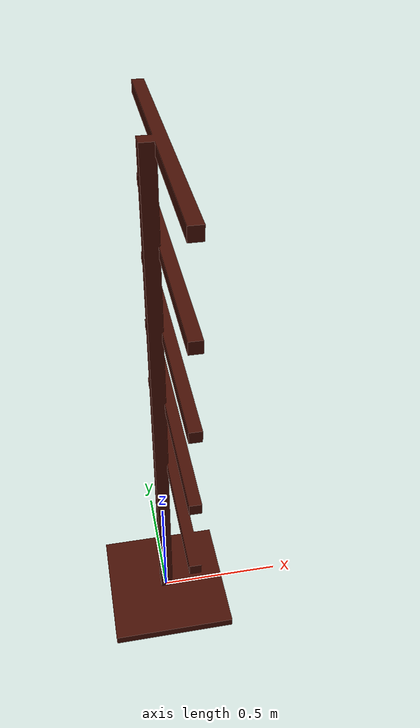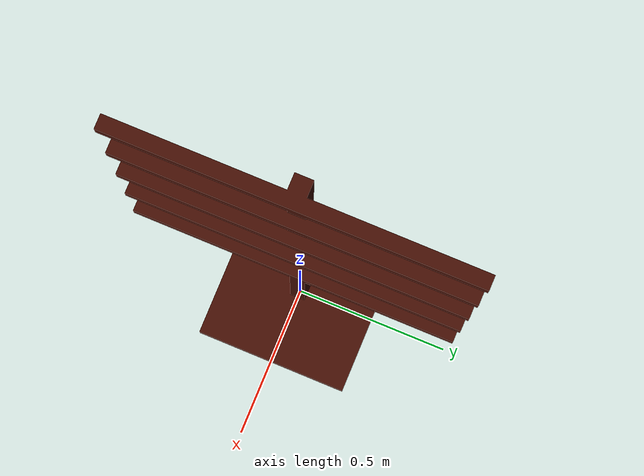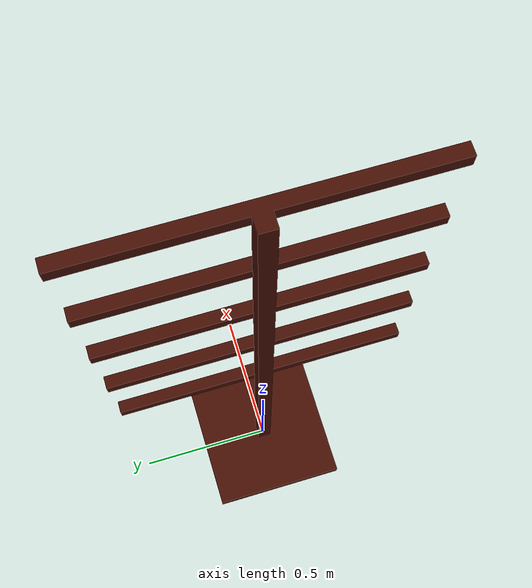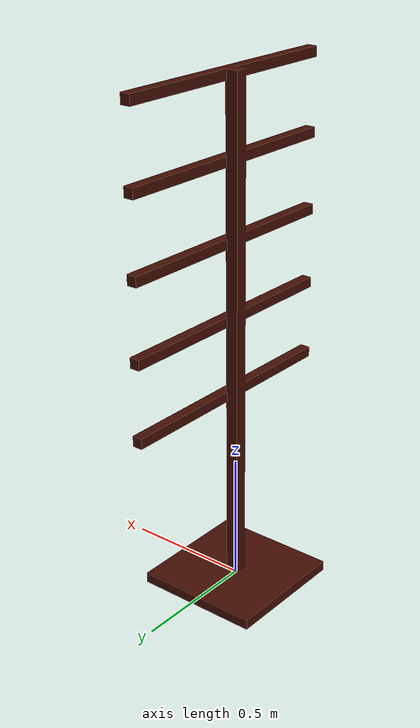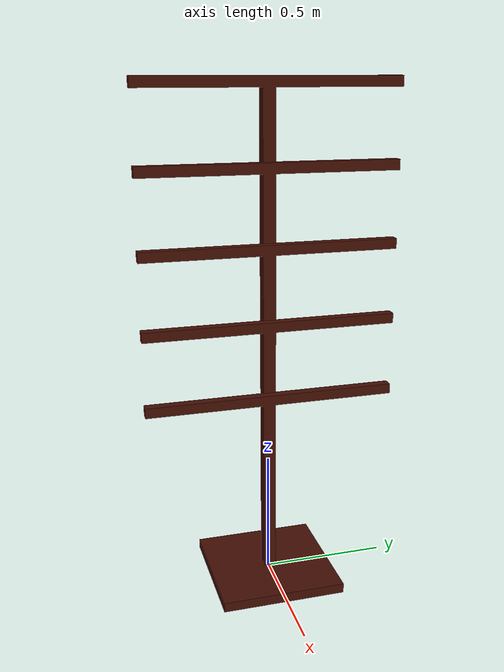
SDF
<sdf version="1.6">
 <world name="3D_5_1_6_0">
  <light name="sun" type="directional">
   <pose>0 0 10 0 -0 0</pose>
   <diffuse>1 1 1 1</diffuse>
   <specular>0.2 0.2 0.2 1</specular>
   <attenuation>
    <range>1000</range>
    <constant>0.9</constant>
    <linear>0.01</linear>
    <quadratic>0.001</quadratic>
   </attenuation>
   <direction>-0.5 -0.5 -1</direction>
  </light>
  <physics name="default_physics" default="0" type="ode">
   <max_step_size>0.001</max_step_size>
   <real_time_factor>1</real_time_factor>
   <real_time_update_rate>1000</real_time_update_rate>
  </physics>
  <scene><ambient>1 1 1 1</ambient><background>0.0 0.0 0.0 1</background><shadows>0</shadows></scene>
  <spherical_coordinates>
   <surface_model>EARTH_WGS84</surface_model>
   <latitude_deg>0.00</latitude_deg>
   <longitude_deg>0.00</longitude_deg>
   <elevation>0</elevation>
   <heading_deg>0</heading_deg>
  </spherical_coordinates>
  <gravity>0 0 -9.8</gravity>
  <magnetic_field>6e-06 2.3e-05 -4.2e-05</magnetic_field>
  <atmosphere type="adiabatic"/>
  <model name="digital_tree">
   <link name="digital_tree_link">
    <inertial>
     <mass>50</mass>
     <inertia><ixx>1000</ixx><ixy>1000</ixy><ixz>1000</ixz><iyy>1000</iyy><iyz>1000</iyz><izz>1000</izz></inertia>
    </inertial>
    <collision name="digital_tree_link_collision">
     <geometry>
      <mesh>
       <scale>1 1 1</scale>
       <uri>file:///media/mirko/Volume/GITHUB/Positioning_MetroAgriFor2024/models/digital_tree/meshes/digital_tree.dae</uri>
      </mesh>
     </geometry>
    </collision>
    <visual name="digital_tree_link_visual">
     <geometry>
      <mesh>
       <scale>1 1 1</scale>
       <uri>file:///media/mirko/Volume/GITHUB/Positioning_MetroAgriFor2024/models/digital_tree/meshes/digital_tree.dae</uri>
      </mesh>
     </geometry>
    </visual>
   </link>
   <static>1</static>
   <pose>0 0 0 0 0 1.57</pose>
  </model>
  <model name="1">
   <link name="1_link">
    <inertial>
     <mass>0.0058</mass>
     <inertia><ixx>1000</ixx><ixy>1000</ixy><ixz>1000</ixz><iyy>1000</iyy><iyz>1000</iyz><izz>1000</izz></inertia>
    </inertial>
    <collision name="1_link_collision">
     <geometry>
      <mesh>
       <scale>1 1 1</scale>
       <size>0.0651789285714286 0.0651789285714286 0.0651789285714286</size>
       <uri>file:///media/mirko/Volume/GITHUB/Positioning_MetroAgriFor2024/models/tennis_ball/meshes/TennisBall.dae</uri>
      </mesh>
     </geometry>
    </collision>
    <visual name="1_link_visual">
     <geometry>
      <mesh>
       <size>0.0651789285714286 0.0651789285714286 0.0651789285714286</size>
       <scale>1 1 1</scale>
       <uri>file:///media/mirko/Volume/GITHUB/Positioning_MetroAgriFor2024/models/tennis_ball/meshes/TennisBall.dae</uri>
      </mesh>
     </geometry>
     <material>
      <ambient>1.0 1.0 0 1</ambient>
      <diffuse>0.7 0.9 0 1</diffuse>
      <specular>0.2 0.2 0.2 64</specular>
      <emissive>0.1 0 0.1 1</emissive>
     </material>
    </visual>
   </link>
   <static>1</static>
  </model>
  <model name="2">
   <link name="2_link">
    <inertial>
     <mass>0.00915539245667686</mass>
     <inertia><ixx>1000</ixx><ixy>1000</ixy><ixz>1000</ixz><iyy>1000</iyy><iyz>1000</iyz><izz>1000</izz></inertia>
    </inertial>
    <collision name="2_link_collision">
     <geometry>
      <mesh>
       <scale>1 1 1</scale>
       <size>0.05986 0.05596 0.052340000000000005</size>
       <uri>file:///media/mirko/Volume/GITHUB/Positioning_MetroAgriFor2024/models/apple/meshes/apple.dae</uri>
      </mesh>
     </geometry>
    </collision>
    <visual name="2_link_visual">
     <geometry>
      <mesh>
       <size>0.05986 0.05596 0.052340000000000005</size>
       <scale>1 1 1</scale>
       <uri>file:///media/mirko/Volume/GITHUB/Positioning_MetroAgriFor2024/models/apple/meshes/apple.dae</uri>
      </mesh>
     </geometry>
     <material>
      <ambient>0.792156862745098 0.49411764705882355 0.41568627450980394 1.0</ambient>
      <diffuse>0.7 0.9 0 1</diffuse>
      <specular>0.2 0.2 0.2 64</specular>
      <emissive>0.1 0 0.1 1</emissive>
     </material>
    </visual>
   </link>
   <static>1</static>
  </model>
  <model name="3">
   <link name="3_link">
    <inertial>
     <mass>0.010428165137614678</mass>
     <inertia><ixx>1000</ixx><ixy>1000</ixy><ixz>1000</ixz><iyy>1000</iyy><iyz>1000</iyz><izz>1000</izz></inertia>
    </inertial>
    <collision name="3_link_collision">
     <geometry>
      <mesh>
       <scale>1 1 1</scale>
       <size>0.061149999999999996 0.05579 0.05243</size>
       <uri>file:///media/mirko/Volume/GITHUB/Positioning_MetroAgriFor2024/models/apple/meshes/apple.dae</uri>
      </mesh>
     </geometry>
    </collision>
    <visual name="3_link_visual">
     <geometry>
      <mesh>
       <size>0.061149999999999996 0.05579 0.05243</size>
       <scale>1 1 1</scale>
       <uri>file:///media/mirko/Volume/GITHUB/Positioning_MetroAgriFor2024/models/apple/meshes/apple.dae</uri>
      </mesh>
     </geometry>
     <material>
      <ambient>0.9470588235294117 0.9803921568627451 0.7490196078431373 1.0</ambient>
      <diffuse>0.7 0.9 0 1</diffuse>
      <specular>0.2 0.2 0.2 64</specular>
      <emissive>0.1 0 0.1 1</emissive>
     </material>
    </visual>
   </link>
   <static>1</static>
  </model>
  <model name="4">
   <link name="4_link">
    <inertial>
     <mass>0.011163730886850153</mass>
     <inertia><ixx>1000</ixx><ixy>1000</ixy><ixz>1000</ixz><iyy>1000</iyy><iyz>1000</iyz><izz>1000</izz></inertia>
    </inertial>
    <collision name="4_link_collision">
     <geometry>
      <mesh>
       <scale>1 1 1</scale>
       <size>0.06436 0.061149999999999996 0.05579</size>
       <uri>file:///media/mirko/Volume/GITHUB/Positioning_MetroAgriFor2024/models/apple/meshes/apple.dae</uri>
      </mesh>
     </geometry>
    </collision>
    <visual name="4_link_visual">
     <geometry>
      <mesh>
       <size>0.06436 0.061149999999999996 0.05579</size>
       <scale>1 1 1</scale>
       <uri>file:///media/mirko/Volume/GITHUB/Positioning_MetroAgriFor2024/models/apple/meshes/apple.dae</uri>
      </mesh>
     </geometry>
     <material>
      <ambient>0.7450980392156863 0.7607843137254902 0.5411764705882353 1.0</ambient>
      <diffuse>0.7 0.9 0 1</diffuse>
      <specular>0.2 0.2 0.2 64</specular>
      <emissive>0.1 0 0.1 1</emissive>
     </material>
    </visual>
   </link>
   <static>1</static>
  </model>
  <model name="5">
   <link name="5_link">
    <inertial>
     <mass>0.009999286442405707</mass>
     <inertia><ixx>1000</ixx><ixy>1000</ixy><ixz>1000</ixz><iyy>1000</iyy><iyz>1000</iyz><izz>1000</izz></inertia>
    </inertial>
    <collision name="5_link_collision">
     <geometry>
      <mesh>
       <scale>1 1 1</scale>
       <size>0.05882 0.05952 0.052469999999999996</size>
       <uri>file:///media/mirko/Volume/GITHUB/Positioning_MetroAgriFor2024/models/apple/meshes/apple.dae</uri>
      </mesh>
     </geometry>
    </collision>
    <visual name="5_link_visual">
     <geometry>
      <mesh>
       <size>0.05882 0.05952 0.052469999999999996</size>
       <scale>1 1 1</scale>
       <uri>file:///media/mirko/Volume/GITHUB/Positioning_MetroAgriFor2024/models/apple/meshes/apple.dae</uri>
      </mesh>
     </geometry>
     <material>
      <ambient>0.6823529411764706 0.6235294117647059 0.4392156862745098 1.0</ambient>
      <diffuse>0.7 0.9 0 1</diffuse>
      <specular>0.2 0.2 0.2 64</specular>
      <emissive>0.1 0 0.1 1</emissive>
     </material>
    </visual>
   </link>
   <static>1</static>
  </model>
  <model name="6">
   <link name="6_link">
    <inertial>
     <mass>0.007805096839959225</mass>
     <inertia><ixx>1000</ixx><ixy>1000</ixy><ixz>1000</ixz><iyy>1000</iyy><iyz>1000</iyz><izz>1000</izz></inertia>
    </inertial>
    <collision name="6_link_collision">
     <geometry>
      <mesh>
       <scale>1 1 1</scale>
       <size>0.053700000000000005 0.05374 0.05364</size>
       <uri>file:///media/mirko/Volume/GITHUB/Positioning_MetroAgriFor2024/models/apple/meshes/apple.dae</uri>
      </mesh>
     </geometry>
    </collision>
    <visual name="6_link_visual">
     <geometry>
      <mesh>
       <size>0.053700000000000005 0.05374 0.05364</size>
       <scale>1 1 1</scale>
       <uri>file:///media/mirko/Volume/GITHUB/Positioning_MetroAgriFor2024/models/apple/meshes/apple.dae</uri>
      </mesh>
     </geometry>
     <material>
      <ambient>0.6666666666666666 0.1568627450980392 0.24313725490196078 1.0</ambient>
      <diffuse>0.7 0.9 0 1</diffuse>
      <specular>0.2 0.2 0.2 64</specular>
      <emissive>0.1 0 0.1 1</emissive>
     </material>
    </visual>
   </link>
   <static>1</static>
  </model>
  <model name="7">
   <link name="7_link">
    <inertial>
     <mass>0.009494189602446482</mass>
     <inertia><ixx>1000</ixx><ixy>1000</ixy><ixz>1000</ixz><iyy>1000</iyy><iyz>1000</iyz><izz>1000</izz></inertia>
    </inertial>
    <collision name="7_link_collision">
     <geometry>
      <mesh>
       <scale>1 1 1</scale>
       <size>0.06105 0.05845 0.04982</size>
       <uri>file:///media/mirko/Volume/GITHUB/Positioning_MetroAgriFor2024/models/apple/meshes/apple.dae</uri>
      </mesh>
     </geometry>
    </collision>
    <visual name="7_link_visual">
     <geometry>
      <mesh>
       <size>0.06105 0.05845 0.04982</size>
       <scale>1 1 1</scale>
       <uri>file:///media/mirko/Volume/GITHUB/Positioning_MetroAgriFor2024/models/apple/meshes/apple.dae</uri>
      </mesh>
     </geometry>
     <material>
      <ambient>0.7176470588235294 0.6333333333333333 0.396078431372549 1.0</ambient>
      <diffuse>0.7 0.9 0 1</diffuse>
      <specular>0.2 0.2 0.2 64</specular>
      <emissive>0.1 0 0.1 1</emissive>
     </material>
    </visual>
   </link>
   <static>1</static>
  </model>
  <model name="8">
   <link name="8_link">
    <inertial>
     <mass>0.0058</mass>
     <inertia><ixx>1000</ixx><ixy>1000</ixy><ixz>1000</ixz><iyy>1000</iyy><iyz>1000</iyz><izz>1000</izz></inertia>
    </inertial>
    <collision name="8_link_collision">
     <geometry>
      <mesh>
       <scale>1 1 1</scale>
       <size>0.0651789285714286 0.0651789285714286 0.0651789285714286</size>
       <uri>file:///media/mirko/Volume/GITHUB/Positioning_MetroAgriFor2024/models/tennis_ball/meshes/TennisBall.dae</uri>
      </mesh>
     </geometry>
    </collision>
    <visual name="8_link_visual">
     <geometry>
      <mesh>
       <size>0.0651789285714286 0.0651789285714286 0.0651789285714286</size>
       <scale>1 1 1</scale>
       <uri>file:///media/mirko/Volume/GITHUB/Positioning_MetroAgriFor2024/models/tennis_ball/meshes/TennisBall.dae</uri>
      </mesh>
     </geometry>
     <material>
      <ambient>1.0 1.0 0 1</ambient>
      <diffuse>0.7 0.9 0 1</diffuse>
      <specular>0.2 0.2 0.2 64</specular>
      <emissive>0.1 0 0.1 1</emissive>
     </material>
    </visual>
   </link>
   <static>1</static>
  </model>
  <model name="9">
   <link name="9_link">
    <inertial>
     <mass>0.012033598369011213</mass>
     <inertia><ixx>1000</ixx><ixy>1000</ixy><ixz>1000</ixz><iyy>1000</iyy><iyz>1000</iyz><izz>1000</izz></inertia>
    </inertial>
    <collision name="9_link_collision">
     <geometry>
      <mesh>
       <scale>1 1 1</scale>
       <size>0.06418 0.06325 0.055560000000000005</size>
       <uri>file:///media/mirko/Volume/GITHUB/Positioning_MetroAgriFor2024/models/apple/meshes/apple.dae</uri>
      </mesh>
     </geometry>
    </collision>
    <visual name="9_link_visual">
     <geometry>
      <mesh>
       <size>0.06418 0.06325 0.055560000000000005</size>
       <scale>1 1 1</scale>
       <uri>file:///media/mirko/Volume/GITHUB/Positioning_MetroAgriFor2024/models/apple/meshes/apple.dae</uri>
      </mesh>
     </geometry>
     <material>
      <ambient>0.6627450980392157 0.17254901960784313 0.307843137254902 1.0</ambient>
      <diffuse>0.7 0.9 0 1</diffuse>
      <specular>0.2 0.2 0.2 64</specular>
      <emissive>0.1 0 0.1 1</emissive>
     </material>
    </visual>
   </link>
   <static>1</static>
  </model>
  <model name="10">
   <link name="10_link">
    <inertial>
     <mass>0.005653802242609582</mass>
     <inertia><ixx>1000</ixx><ixy>1000</ixy><ixz>1000</ixz><iyy>1000</iyy><iyz>1000</iyz><izz>1000</izz></inertia>
    </inertial>
    <collision name="10_link_collision">
     <geometry>
      <mesh>
       <scale>1 1 1</scale>
       <size>0.049530000000000005 0.047049999999999995 0.04403</size>
       <uri>file:///media/mirko/Volume/GITHUB/Positioning_MetroAgriFor2024/models/apple/meshes/apple.dae</uri>
      </mesh>
     </geometry>
    </collision>
    <visual name="10_link_visual">
     <geometry>
      <mesh>
       <size>0.049530000000000005 0.047049999999999995 0.04403</size>
       <scale>1 1 1</scale>
       <uri>file:///media/mirko/Volume/GITHUB/Positioning_MetroAgriFor2024/models/apple/meshes/apple.dae</uri>
      </mesh>
     </geometry>
     <material>
      <ambient>0.5882352941176471 0.47058823529411764 0.3215686274509804 1.0</ambient>
      <diffuse>0.7 0.9 0 1</diffuse>
      <specular>0.2 0.2 0.2 64</specular>
      <emissive>0.1 0 0.1 1</emissive>
     </material>
    </visual>
   </link>
   <static>1</static>
  </model>
  <model name="11">
   <link name="11_link">
    <inertial>
     <mass>0.016063649337410803</mass>
     <inertia><ixx>1000</ixx><ixy>1000</ixy><ixz>1000</ixz><iyy>1000</iyy><iyz>1000</iyz><izz>1000</izz></inertia>
    </inertial>
    <collision name="11_link_collision">
     <geometry>
      <mesh>
       <scale>1 1 1</scale>
       <size>0.06987 0.06844 0.06317</size>
       <uri>file:///media/mirko/Volume/GITHUB/Positioning_MetroAgriFor2024/models/apple/meshes/apple.dae</uri>
      </mesh>
     </geometry>
    </collision>
    <visual name="11_link_visual">
     <geometry>
      <mesh>
       <size>0.06987 0.06844 0.06317</size>
       <scale>1 1 1</scale>
       <uri>file:///media/mirko/Volume/GITHUB/Positioning_MetroAgriFor2024/models/apple/meshes/apple.dae</uri>
      </mesh>
     </geometry>
     <material>
      <ambient>0.7450980392156863 0.18823529411764706 0.25882352941176473 1.0</ambient>
      <diffuse>0.7 0.9 0 1</diffuse>
      <specular>0.2 0.2 0.2 64</specular>
      <emissive>0.1 0 0.1 1</emissive>
     </material>
    </visual>
   </link>
   <static>1</static>
  </model>
  <model name="12">
   <link name="12_link">
    <inertial>
     <mass>0.009446177370030581</mass>
     <inertia><ixx>1000</ixx><ixy>1000</ixy><ixz>1000</ixz><iyy>1000</iyy><iyz>1000</iyz><izz>1000</izz></inertia>
    </inertial>
    <collision name="12_link_collision">
     <geometry>
      <mesh>
       <scale>1 1 1</scale>
       <size>0.059789999999999996 0.05779 0.05198</size>
       <uri>file:///media/mirko/Volume/GITHUB/Positioning_MetroAgriFor2024/models/apple/meshes/apple.dae</uri>
      </mesh>
     </geometry>
    </collision>
    <visual name="12_link_visual">
     <geometry>
      <mesh>
       <size>0.059789999999999996 0.05779 0.05198</size>
       <scale>1 1 1</scale>
       <uri>file:///media/mirko/Volume/GITHUB/Positioning_MetroAgriFor2024/models/apple/meshes/apple.dae</uri>
      </mesh>
     </geometry>
     <material>
      <ambient>0.6784313725490196 0.5098039215686274 0.3196078431372549 1.0</ambient>
      <diffuse>0.7 0.9 0 1</diffuse>
      <specular>0.2 0.2 0.2 64</specular>
      <emissive>0.1 0 0.1 1</emissive>
     </material>
    </visual>
   </link>
   <static>1</static>
  </model>
  <model name="13">
   <link name="13_link">
    <inertial>
     <mass>0.01463782874617737</mass>
     <inertia><ixx>1000</ixx><ixy>1000</ixy><ixz>1000</ixz><iyy>1000</iyy><iyz>1000</iyz><izz>1000</izz></inertia>
    </inertial>
    <collision name="13_link_collision">
     <geometry>
      <mesh>
       <scale>1 1 1</scale>
       <size>0.06909 0.06714 0.059789999999999996</size>
       <uri>file:///media/mirko/Volume/GITHUB/Positioning_MetroAgriFor2024/models/apple/meshes/apple.dae</uri>
      </mesh>
     </geometry>
    </collision>
    <visual name="13_link_visual">
     <geometry>
      <mesh>
       <size>0.06909 0.06714 0.059789999999999996</size>
       <scale>1 1 1</scale>
       <uri>file:///media/mirko/Volume/GITHUB/Positioning_MetroAgriFor2024/models/apple/meshes/apple.dae</uri>
      </mesh>
     </geometry>
     <material>
      <ambient>0.7490196078431373 0.20392156862745098 0.34705882352941175 1.0</ambient>
      <diffuse>0.7 0.9 0 1</diffuse>
      <specular>0.2 0.2 0.2 64</specular>
      <emissive>0.1 0 0.1 1</emissive>
     </material>
    </visual>
   </link>
   <static>1</static>
  </model>
  <model name="14">
   <link name="14_link">
    <inertial>
     <mass>0.00916821610601427</mass>
     <inertia><ixx>1000</ixx><ixy>1000</ixy><ixz>1000</ixz><iyy>1000</iyy><iyz>1000</iyz><izz>1000</izz></inertia>
    </inertial>
    <collision name="14_link_collision">
     <geometry>
      <mesh>
       <scale>1 1 1</scale>
       <size>0.05787 0.05712 0.05273</size>
       <uri>file:///media/mirko/Volume/GITHUB/Positioning_MetroAgriFor2024/models/apple/meshes/apple.dae</uri>
      </mesh>
     </geometry>
    </collision>
    <visual name="14_link_visual">
     <geometry>
      <mesh>
       <size>0.05787 0.05712 0.05273</size>
       <scale>1 1 1</scale>
       <uri>file:///media/mirko/Volume/GITHUB/Positioning_MetroAgriFor2024/models/apple/meshes/apple.dae</uri>
      </mesh>
     </geometry>
     <material>
      <ambient>0.7686274509803922 0.4627450980392157 0.35294117647058826 1.0</ambient>
      <diffuse>0.7 0.9 0 1</diffuse>
      <specular>0.2 0.2 0.2 64</specular>
      <emissive>0.1 0 0.1 1</emissive>
     </material>
    </visual>
   </link>
   <static>1</static>
  </model>
  <model name="15">
   <link name="15_link">
    <inertial>
     <mass>0.0058</mass>
     <inertia><ixx>1000</ixx><ixy>1000</ixy><ixz>1000</ixz><iyy>1000</iyy><iyz>1000</iyz><izz>1000</izz></inertia>
    </inertial>
    <collision name="15_link_collision">
     <geometry>
      <mesh>
       <scale>1 1 1</scale>
       <size>0.0651789285714286 0.0651789285714286 0.0651789285714286</size>
       <uri>file:///media/mirko/Volume/GITHUB/Positioning_MetroAgriFor2024/models/tennis_ball/meshes/TennisBall.dae</uri>
      </mesh>
     </geometry>
    </collision>
    <visual name="15_link_visual">
     <geometry>
      <mesh>
       <size>0.0651789285714286 0.0651789285714286 0.0651789285714286</size>
       <scale>1 1 1</scale>
       <uri>file:///media/mirko/Volume/GITHUB/Positioning_MetroAgriFor2024/models/tennis_ball/meshes/TennisBall.dae</uri>
      </mesh>
     </geometry>
     <material>
      <ambient>1.0 1.0 0 1</ambient>
      <diffuse>0.7 0.9 0 1</diffuse>
      <specular>0.2 0.2 0.2 64</specular>
      <emissive>0.1 0 0.1 1</emissive>
     </material>
    </visual>
   </link>
   <static>1</static>
  </model>
  <model name="16">
   <link name="16_link">
    <inertial>
     <mass>0.013899673802242609</mass>
     <inertia><ixx>1000</ixx><ixy>1000</ixy><ixz>1000</ixz><iyy>1000</iyy><iyz>1000</iyz><izz>1000</izz></inertia>
    </inertial>
    <collision name="16_link_collision">
     <geometry>
      <mesh>
       <scale>1 1 1</scale>
       <size>0.06658 0.06581000000000001 0.05819</size>
       <uri>file:///media/mirko/Volume/GITHUB/Positioning_MetroAgriFor2024/models/apple/meshes/apple.dae</uri>
      </mesh>
     </geometry>
    </collision>
    <visual name="16_link_visual">
     <geometry>
      <mesh>
       <size>0.06658 0.06581000000000001 0.05819</size>
       <scale>1 1 1</scale>
       <uri>file:///media/mirko/Volume/GITHUB/Positioning_MetroAgriFor2024/models/apple/meshes/apple.dae</uri>
      </mesh>
     </geometry>
     <material>
      <ambient>0.788235294117647 0.3411764705882353 0.4588235294117647 1.0</ambient>
      <diffuse>0.7 0.9 0 1</diffuse>
      <specular>0.2 0.2 0.2 64</specular>
      <emissive>0.1 0 0.1 1</emissive>
     </material>
    </visual>
   </link>
   <static>1</static>
  </model>
  <model name="17">
   <link name="17_link">
    <inertial>
     <mass>0.0055846177370030585</mass>
     <inertia><ixx>1000</ixx><ixy>1000</ixy><ixz>1000</ixz><iyy>1000</iyy><iyz>1000</iyz><izz>1000</izz></inertia>
    </inertial>
    <collision name="17_link_collision">
     <geometry>
      <mesh>
       <scale>1 1 1</scale>
       <size>0.04845 0.049159999999999995 0.0418</size>
       <uri>file:///media/mirko/Volume/GITHUB/Positioning_MetroAgriFor2024/models/apple/meshes/apple.dae</uri>
      </mesh>
     </geometry>
    </collision>
    <visual name="17_link_visual">
     <geometry>
      <mesh>
       <size>0.04845 0.049159999999999995 0.0418</size>
       <scale>1 1 1</scale>
       <uri>file:///media/mirko/Volume/GITHUB/Positioning_MetroAgriFor2024/models/apple/meshes/apple.dae</uri>
      </mesh>
     </geometry>
     <material>
      <ambient>0.6823529411764706 0.6274509803921569 0.49411764705882355 1.0</ambient>
      <diffuse>0.7 0.9 0 1</diffuse>
      <specular>0.2 0.2 0.2 64</specular>
      <emissive>0.1 0 0.1 1</emissive>
     </material>
    </visual>
   </link>
   <static>1</static>
  </model>
  <model name="18">
   <link name="18_link">
    <inertial>
     <mass>0.009107064220183486</mass>
     <inertia><ixx>1000</ixx><ixy>1000</ixy><ixz>1000</ixz><iyy>1000</iyy><iyz>1000</iyz><izz>1000</izz></inertia>
    </inertial>
    <collision name="18_link_collision">
     <geometry>
      <mesh>
       <scale>1 1 1</scale>
       <size>0.05932 0.056850000000000005 0.05077</size>
       <uri>file:///media/mirko/Volume/GITHUB/Positioning_MetroAgriFor2024/models/apple/meshes/apple.dae</uri>
      </mesh>
     </geometry>
    </collision>
    <visual name="18_link_visual">
     <geometry>
      <mesh>
       <size>0.05932 0.056850000000000005 0.05077</size>
       <scale>1 1 1</scale>
       <uri>file:///media/mirko/Volume/GITHUB/Positioning_MetroAgriFor2024/models/apple/meshes/apple.dae</uri>
      </mesh>
     </geometry>
     <material>
      <ambient>0.6588235294117647 0.5215686274509804 0.3568627450980392 1.0</ambient>
      <diffuse>0.7 0.9 0 1</diffuse>
      <specular>0.2 0.2 0.2 64</specular>
      <emissive>0.1 0 0.1 1</emissive>
     </material>
    </visual>
   </link>
   <static>1</static>
  </model>
  <model name="19">
   <link name="19_link">
    <inertial>
     <mass>0.0058</mass>
     <inertia><ixx>1000</ixx><ixy>1000</ixy><ixz>1000</ixz><iyy>1000</iyy><iyz>1000</iyz><izz>1000</izz></inertia>
    </inertial>
    <collision name="19_link_collision">
     <geometry>
      <mesh>
       <scale>1 1 1</scale>
       <size>0.0651789285714286 0.0651789285714286 0.0651789285714286</size>
       <uri>file:///media/mirko/Volume/GITHUB/Positioning_MetroAgriFor2024/models/tennis_ball/meshes/TennisBall.dae</uri>
      </mesh>
     </geometry>
    </collision>
    <visual name="19_link_visual">
     <geometry>
      <mesh>
       <size>0.0651789285714286 0.0651789285714286 0.0651789285714286</size>
       <scale>1 1 1</scale>
       <uri>file:///media/mirko/Volume/GITHUB/Positioning_MetroAgriFor2024/models/tennis_ball/meshes/TennisBall.dae</uri>
      </mesh>
     </geometry>
     <material>
      <ambient>1.0 1.0 0 1</ambient>
      <diffuse>0.7 0.9 0 1</diffuse>
      <specular>0.2 0.2 0.2 64</specular>
      <emissive>0.1 0 0.1 1</emissive>
     </material>
    </visual>
   </link>
   <static>1</static>
  </model>
  <model name="20">
   <link name="20_link">
    <inertial>
     <mass>0.013313068297655453</mass>
     <inertia><ixx>1000</ixx><ixy>1000</ixy><ixz>1000</ixz><iyy>1000</iyy><iyz>1000</iyz><izz>1000</izz></inertia>
    </inertial>
    <collision name="20_link_collision">
     <geometry>
      <mesh>
       <scale>1 1 1</scale>
       <size>0.06508 0.06317 0.05831</size>
       <uri>file:///media/mirko/Volume/GITHUB/Positioning_MetroAgriFor2024/models/apple/meshes/apple.dae</uri>
      </mesh>
     </geometry>
    </collision>
    <visual name="20_link_visual">
     <geometry>
      <mesh>
       <size>0.06508 0.06317 0.05831</size>
       <scale>1 1 1</scale>
       <uri>file:///media/mirko/Volume/GITHUB/Positioning_MetroAgriFor2024/models/apple/meshes/apple.dae</uri>
      </mesh>
     </geometry>
     <material>
      <ambient>0.7294117647058823 0.35294117647058826 0.44313725490196076 1.0</ambient>
      <diffuse>0.7 0.9 0 1</diffuse>
      <specular>0.2 0.2 0.2 64</specular>
      <emissive>0.1 0 0.1 1</emissive>
     </material>
    </visual>
   </link>
   <static>1</static>
  </model>
  <model name="21">
   <link name="21_link">
    <inertial>
     <mass>0.011936483180428134</mass>
     <inertia><ixx>1000</ixx><ixy>1000</ixy><ixz>1000</ixz><iyy>1000</iyy><iyz>1000</iyz><izz>1000</izz></inertia>
    </inertial>
    <collision name="21_link_collision">
     <geometry>
      <mesh>
       <scale>1 1 1</scale>
       <size>0.06486 0.05994 0.05818</size>
       <uri>file:///media/mirko/Volume/GITHUB/Positioning_MetroAgriFor2024/models/apple/meshes/apple.dae</uri>
      </mesh>
     </geometry>
    </collision>
    <visual name="21_link_visual">
     <geometry>
      <mesh>
       <size>0.06486 0.05994 0.05818</size>
       <scale>1 1 1</scale>
       <uri>file:///media/mirko/Volume/GITHUB/Positioning_MetroAgriFor2024/models/apple/meshes/apple.dae</uri>
      </mesh>
     </geometry>
     <material>
      <ambient>0.6529411764705882 0.6862745098039216 0.5254901960784314 1.0</ambient>
      <diffuse>0.7 0.9 0 1</diffuse>
      <specular>0.2 0.2 0.2 64</specular>
      <emissive>0.1 0 0.1 1</emissive>
     </material>
    </visual>
   </link>
   <static>1</static>
  </model>
  <model name="22">
   <link name="22_link">
    <inertial>
     <mass>0.0058</mass>
     <inertia><ixx>1000</ixx><ixy>1000</ixy><ixz>1000</ixz><iyy>1000</iyy><iyz>1000</iyz><izz>1000</izz></inertia>
    </inertial>
    <collision name="22_link_collision">
     <geometry>
      <mesh>
       <scale>1 1 1</scale>
       <size>0.0651789285714286 0.0651789285714286 0.0651789285714286</size>
       <uri>file:///media/mirko/Volume/GITHUB/Positioning_MetroAgriFor2024/models/tennis_ball/meshes/TennisBall.dae</uri>
      </mesh>
     </geometry>
    </collision>
    <visual name="22_link_visual">
     <geometry>
      <mesh>
       <size>0.0651789285714286 0.0651789285714286 0.0651789285714286</size>
       <scale>1 1 1</scale>
       <uri>file:///media/mirko/Volume/GITHUB/Positioning_MetroAgriFor2024/models/tennis_ball/meshes/TennisBall.dae</uri>
      </mesh>
     </geometry>
     <material>
      <ambient>1.0 1.0 0 1</ambient>
      <diffuse>0.7 0.9 0 1</diffuse>
      <specular>0.2 0.2 0.2 64</specular>
      <emissive>0.1 0 0.1 1</emissive>
     </material>
    </visual>
   </link>
   <static>1</static>
  </model>
  <model name="23">
   <link name="23_link">
    <inertial>
     <mass>0.005861753312945973</mass>
     <inertia><ixx>1000</ixx><ixy>1000</ixy><ixz>1000</ixz><iyy>1000</iyy><iyz>1000</iyz><izz>1000</izz></inertia>
    </inertial>
    <collision name="23_link_collision">
     <geometry>
      <mesh>
       <scale>1 1 1</scale>
       <size>0.04747 0.0475 0.04828</size>
       <uri>file:///media/mirko/Volume/GITHUB/Positioning_MetroAgriFor2024/models/apple/meshes/apple.dae</uri>
      </mesh>
     </geometry>
    </collision>
    <visual name="23_link_visual">
     <geometry>
      <mesh>
       <size>0.04747 0.0475 0.04828</size>
       <scale>1 1 1</scale>
       <uri>file:///media/mirko/Volume/GITHUB/Positioning_MetroAgriFor2024/models/apple/meshes/apple.dae</uri>
      </mesh>
     </geometry>
     <material>
      <ambient>0.5372549019607843 0.49411764705882355 0.3254901960784314 1.0</ambient>
      <diffuse>0.7 0.9 0 1</diffuse>
      <specular>0.2 0.2 0.2 64</specular>
      <emissive>0.1 0 0.1 1</emissive>
     </material>
    </visual>
   </link>
   <static>1</static>
  </model>
  <model name="24">
   <link name="24_link">
    <inertial>
     <mass>0.010428165137614678</mass>
     <inertia><ixx>1000</ixx><ixy>1000</ixy><ixz>1000</ixz><iyy>1000</iyy><iyz>1000</iyz><izz>1000</izz></inertia>
    </inertial>
    <collision name="24_link_collision">
     <geometry>
      <mesh>
       <scale>1 1 1</scale>
       <size>0.061149999999999996 0.05579 0.05243</size>
       <uri>file:///media/mirko/Volume/GITHUB/Positioning_MetroAgriFor2024/models/apple/meshes/apple.dae</uri>
      </mesh>
     </geometry>
    </collision>
    <visual name="24_link_visual">
     <geometry>
      <mesh>
       <size>0.061149999999999996 0.05579 0.05243</size>
       <scale>1 1 1</scale>
       <uri>file:///media/mirko/Volume/GITHUB/Positioning_MetroAgriFor2024/models/apple/meshes/apple.dae</uri>
      </mesh>
     </geometry>
     <material>
      <ambient>0.7372549019607844 0.6823529411764706 0.5176470588235295 1.0</ambient>
      <diffuse>0.7 0.9 0 1</diffuse>
      <specular>0.2 0.2 0.2 64</specular>
      <emissive>0.1 0 0.1 1</emissive>
     </material>
    </visual>
   </link>
   <static>1</static>
  </model>
  <model name="25">
   <link name="25_link">
    <inertial>
     <mass>0.007575056065239551</mass>
     <inertia><ixx>1000</ixx><ixy>1000</ixy><ixz>1000</ixz><iyy>1000</iyy><iyz>1000</iyz><izz>1000</izz></inertia>
    </inertial>
    <collision name="25_link_collision">
     <geometry>
      <mesh>
       <scale>1 1 1</scale>
       <size>0.055549999999999995 0.05374 0.04924</size>
       <uri>file:///media/mirko/Volume/GITHUB/Positioning_MetroAgriFor2024/models/apple/meshes/apple.dae</uri>
      </mesh>
     </geometry>
    </collision>
    <visual name="25_link_visual">
     <geometry>
      <mesh>
       <size>0.055549999999999995 0.05374 0.04924</size>
       <scale>1 1 1</scale>
       <uri>file:///media/mirko/Volume/GITHUB/Positioning_MetroAgriFor2024/models/apple/meshes/apple.dae</uri>
      </mesh>
     </geometry>
     <material>
      <ambient>0.7196078431372549 0.4666666666666667 0.37450980392156863 1.0</ambient>
      <diffuse>0.7 0.9 0 1</diffuse>
      <specular>0.2 0.2 0.2 64</specular>
      <emissive>0.1 0 0.1 1</emissive>
     </material>
    </visual>
   </link>
   <static>1</static>
  </model>
 </world>
</sdf>
